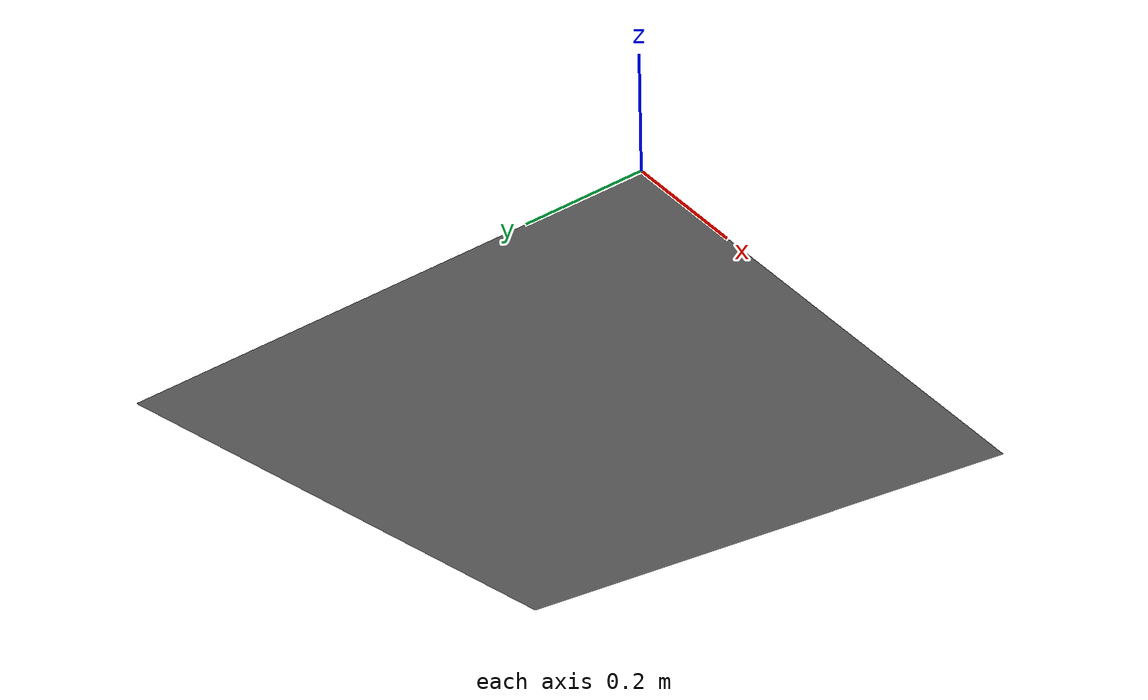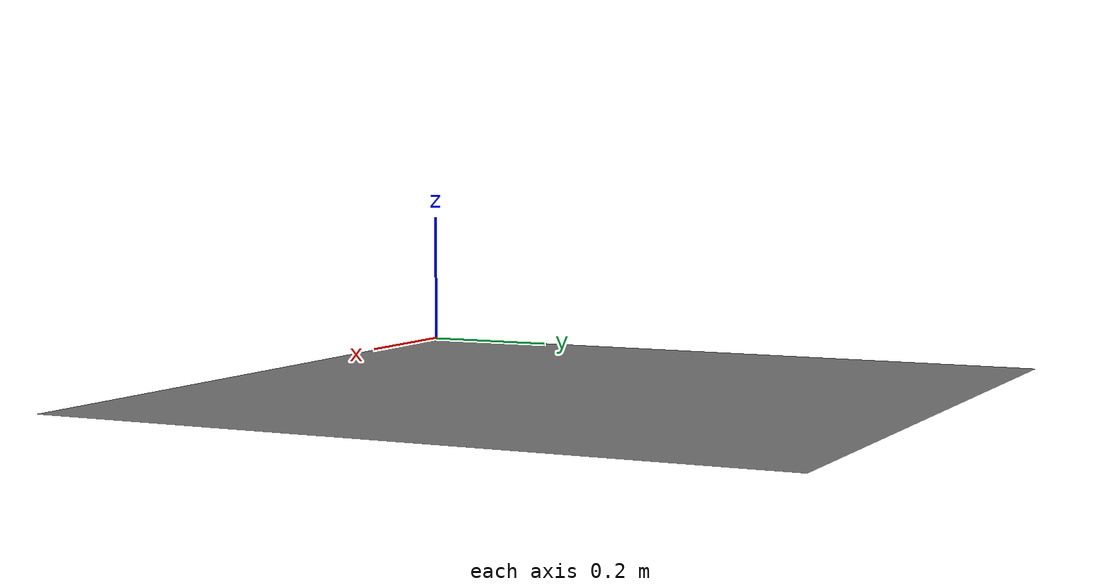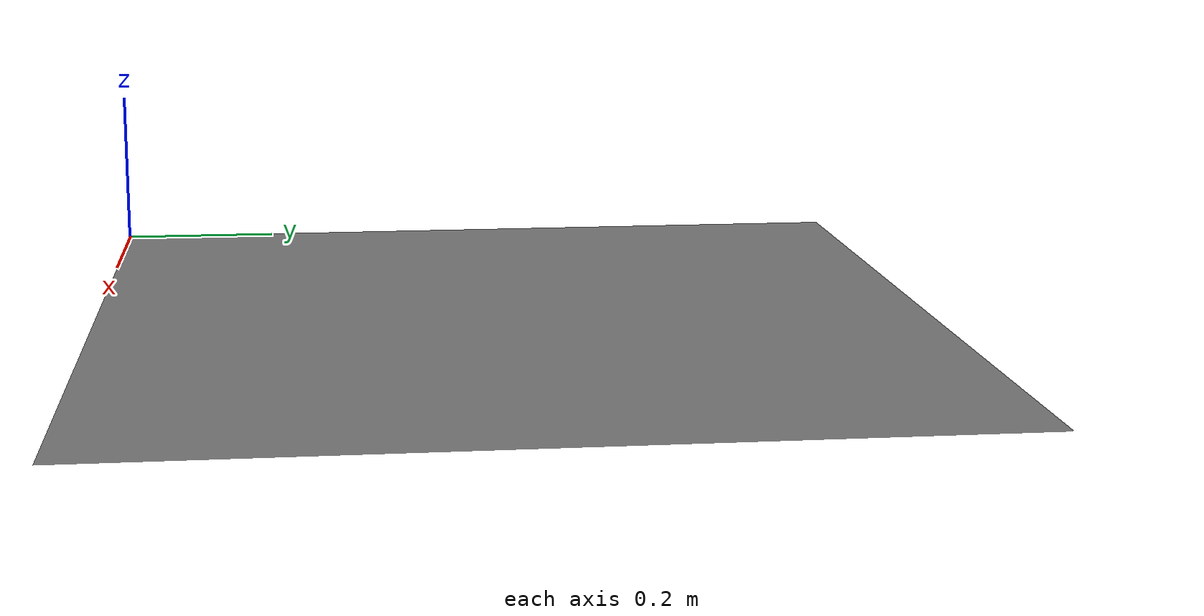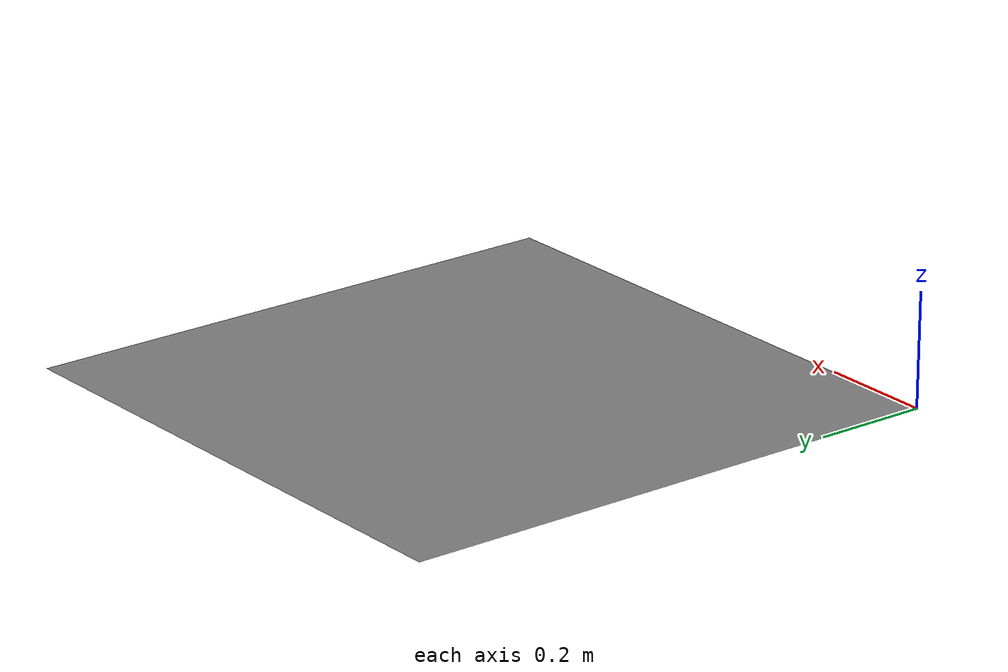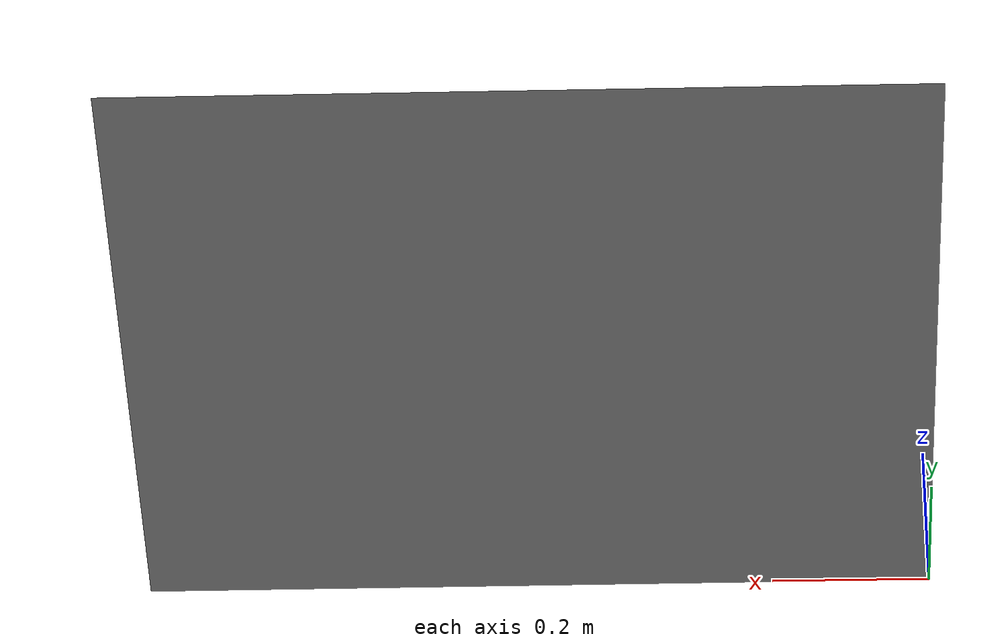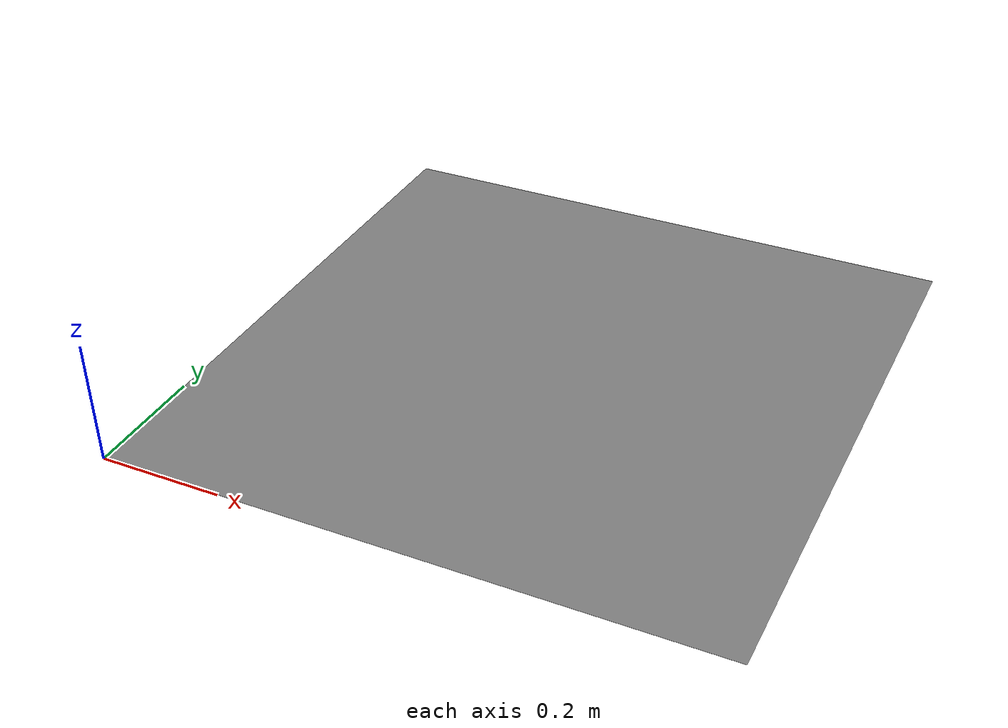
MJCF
<mujoco>
          <compiler exactmeshinertia="true"/>
          <asset>
            <mesh name="flat" vertex="0 0 0  1 0 0  1 1 0  0 1 0"
                  face="0 1 2  0 2 3"/>
          </asset>
          <worldbody>
            <body name="flat_body">
              <geom type="mesh" mesh="flat" density="1000"/>
            </body>
          </worldbody>
        </mujoco>
